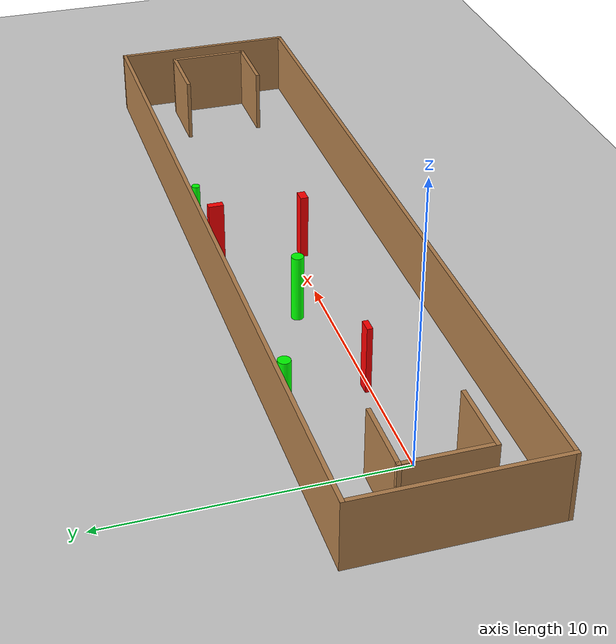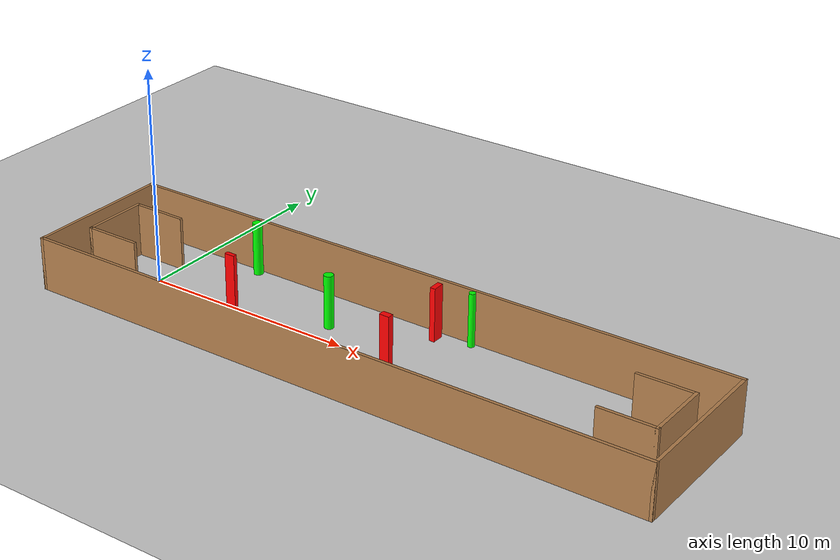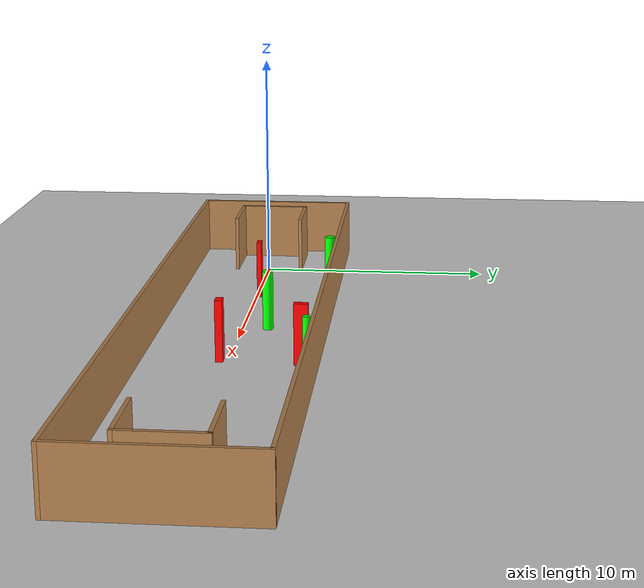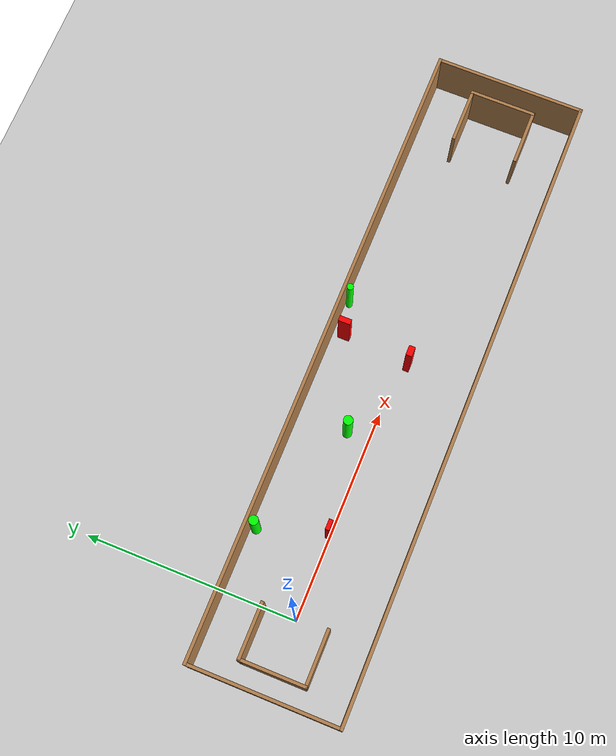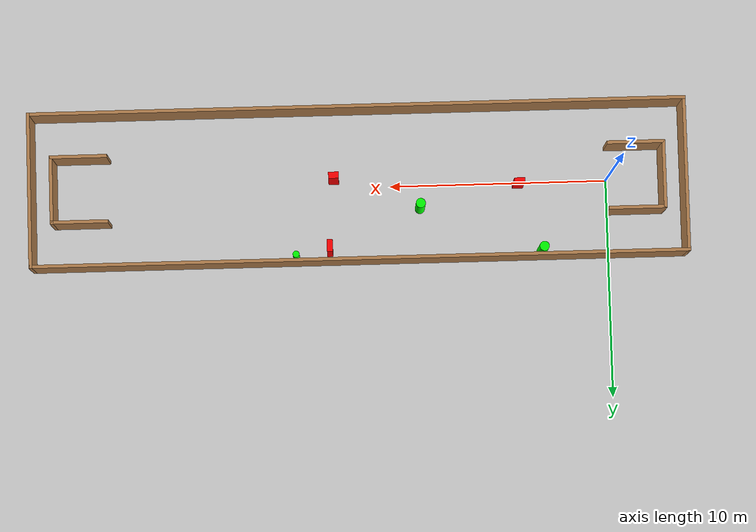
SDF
<sdf version="1.7">
 <world name="default">
  <light name="sun" type="directional">
   <pose>0 0 10 0 -0 0</pose>
   <diffuse>0.8 0.8 0.8 1</diffuse>
   <specular>0.2 0.2 0.2 1</specular>
   <attenuation>
    <range>1000</range>
    <constant>0.9</constant>
    <linear>0.01</linear>
    <quadratic>0.001</quadratic>
   </attenuation>
   <direction>-0.5 0.1 -0.9</direction>
   <spot><inner_angle>0</inner_angle><outer_angle>0</outer_angle><falloff>0</falloff></spot>
  </light>
  <model name="ground_plane">
   <static>1</static>
   <link name="link">
    <collision name="collision">
     <geometry><plane><normal>0 0 1</normal><size>100 100</size></plane></geometry>
     <surface>
      <contact><collide_bitmask>65535</collide_bitmask></contact>
      <friction><ode><mu>100</mu><mu2>50</mu2></ode></friction>
     </surface>
    </collision>
    <visual name="visual">
     <cast_shadows>0</cast_shadows>
     <geometry><plane><normal>0 0 1</normal><size>100 100</size></plane></geometry>
     <material>
      <script><uri>file://media/materials/scripts/gazebo.material</uri><name>Gazebo/Grey</name></script>
     </material>
    </visual>
   </link>
  </model>
  <gravity>0 0 -9.8</gravity>
  <magnetic_field>6e-06 2.3e-05 -4.2e-05</magnetic_field>
  <atmosphere type="adiabatic"/>
  <physics type="ode">
   <max_step_size>0.001</max_step_size>
   <real_time_factor>1</real_time_factor>
   <real_time_update_rate>1000</real_time_update_rate>
  </physics>
  <scene><ambient>0.4 0.4 0.4 1</ambient><background>0.7 0.7 0.7 1</background><shadows>1</shadows></scene>
  <spherical_coordinates>
   <surface_model>EARTH_WGS84</surface_model>
   <latitude_deg>0</latitude_deg>
   <longitude_deg>0</longitude_deg>
   <elevation>0</elevation>
   <heading_deg>0</heading_deg>
  </spherical_coordinates>
  <model name="my_base_walls">
   <link name="Wall_0">
    <collision name="Wall_0_Collision">
     <geometry><box><size>7.15 0.15 2.5</size></box></geometry>
     <pose>0 0 1.25 0 -0 0</pose>
    </collision>
    <visual name="Wall_0_Visual">
     <pose>0 0 1.25 0 -0 0</pose>
     <geometry><box><size>7.15 0.15 2.5</size></box></geometry>
     <material>
      <script><uri>file://media/materials/scripts/gazebo.material</uri><name>Gazebo/Wood</name></script>
      <ambient>1 1 1 1</ambient>
     </material>
     <meta><layer>0</layer></meta>
    </visual>
    <pose>-15 0 0 0 -0 1.5708</pose>
   </link>
   <link name="Wall_10">
    <collision name="Wall_10_Collision">
     <geometry><box><size>2.65 0.15 2.5</size></box></geometry>
     <pose>0 0 1.25 0 -0 0</pose>
    </collision>
    <visual name="Wall_10_Visual">
     <pose>0 0 1.25 0 -0 0</pose>
     <geometry><box><size>2.65 0.15 2.5</size></box></geometry>
     <material>
      <script><uri>file://media/materials/scripts/gazebo.material</uri><name>Gazebo/Wood</name></script>
      <ambient>1 1 1 1</ambient>
     </material>
     <meta><layer>0</layer></meta>
    </visual>
    <pose>-12.75 -1.5 0 0 -0 0</pose>
   </link>
   <link name="Wall_12">
    <collision name="Wall_12_Collision">
     <geometry><box><size>2.65 0.15 2.5</size></box></geometry>
     <pose>0 0 1.25 0 -0 0</pose>
    </collision>
    <visual name="Wall_12_Visual">
     <pose>0 0 1.25 0 -0 0</pose>
     <geometry><box><size>2.65 0.15 2.5</size></box></geometry>
     <material>
      <script><uri>file://media/materials/scripts/gazebo.material</uri><name>Gazebo/Wood</name></script>
      <ambient>1 1 1 1</ambient>
     </material>
     <meta><layer>0</layer></meta>
    </visual>
    <pose>-12.75 1.5 0 0 -0 0</pose>
   </link>
   <link name="Wall_14">
    <collision name="Wall_14_Collision">
     <geometry><box><size>3.15 0.15 2.5</size></box></geometry>
     <pose>0 0 1.25 0 -0 0</pose>
    </collision>
    <visual name="Wall_14_Visual">
     <pose>0 0 1.25 0 -0 0</pose>
     <geometry><box><size>3.15 0.15 2.5</size></box></geometry>
     <material>
      <script><uri>file://media/materials/scripts/gazebo.material</uri><name>Gazebo/Wood</name></script>
      <ambient>1 1 1 1</ambient>
     </material>
     <meta><layer>0</layer></meta>
    </visual>
    <pose>14 0 0 0 -0 -1.5708</pose>
   </link>
   <link name="Wall_15">
    <collision name="Wall_15_Collision">
     <geometry><box><size>2.65 0.15 2.5</size></box></geometry>
     <pose>0 0 1.25 0 -0 0</pose>
    </collision>
    <visual name="Wall_15_Visual">
     <pose>0 0 1.25 0 -0 0</pose>
     <geometry><box><size>2.65 0.15 2.5</size></box></geometry>
     <material>
      <script><uri>file://media/materials/scripts/gazebo.material</uri><name>Gazebo/Wood</name></script>
      <ambient>1 1 1 1</ambient>
     </material>
     <meta><layer>0</layer></meta>
    </visual>
    <pose>12.75 -1.5 0 0 -0 3.14159</pose>
   </link>
   <link name="Wall_17">
    <collision name="Wall_17_Collision">
     <geometry><box><size>2.65 0.15 2.5</size></box></geometry>
     <pose>0 0 1.25 0 -0 0</pose>
    </collision>
    <visual name="Wall_17_Visual">
     <pose>0 0 1.25 0 -0 0</pose>
     <geometry><box><size>2.65 0.15 2.5</size></box></geometry>
     <material>
      <script><uri>file://media/materials/scripts/gazebo.material</uri><name>Gazebo/Wood</name></script>
      <ambient>1 1 1 1</ambient>
     </material>
     <meta><layer>0</layer></meta>
    </visual>
    <pose>12.75 1.5 0 0 -0 3.14159</pose>
   </link>
   <link name="Wall_2">
    <collision name="Wall_2_Collision">
     <geometry><box><size>30.15 0.15 2.5</size></box></geometry>
     <pose>0 0 1.25 0 -0 0</pose>
    </collision>
    <visual name="Wall_2_Visual">
     <pose>0 0 1.25 0 -0 0</pose>
     <geometry><box><size>30.15 0.15 2.5</size></box></geometry>
     <material>
      <script><uri>file://media/materials/scripts/gazebo.material</uri><name>Gazebo/Wood</name></script>
      <ambient>1 1 1 1</ambient>
     </material>
     <meta><layer>0</layer></meta>
    </visual>
    <pose>-0 -3.5 0 0 -0 0</pose>
   </link>
   <link name="Wall_4">
    <collision name="Wall_4_Collision">
     <geometry><box><size>30.15 0.15 2.5</size></box></geometry>
     <pose>0 0 1.25 0 -0 0</pose>
    </collision>
    <visual name="Wall_4_Visual">
     <pose>0 0 1.25 0 -0 0</pose>
     <geometry><box><size>30.15 0.15 2.5</size></box></geometry>
     <material>
      <script><uri>file://media/materials/scripts/gazebo.material</uri><name>Gazebo/Wood</name></script>
      <ambient>1 1 1 1</ambient>
     </material>
     <meta><layer>0</layer></meta>
    </visual>
    <pose>-0 3.5 0 0 -0 0</pose>
   </link>
   <link name="Wall_6">
    <collision name="Wall_6_Collision">
     <geometry><box><size>7.15 0.15 2.5</size></box></geometry>
     <pose>0 0 1.25 0 -0 0</pose>
    </collision>
    <visual name="Wall_6_Visual">
     <pose>0 0 1.25 0 -0 0</pose>
     <geometry><box><size>7.15 0.15 2.5</size></box></geometry>
     <material>
      <script><uri>file://media/materials/scripts/gazebo.material</uri><name>Gazebo/Wood</name></script>
      <ambient>1 1 1 1</ambient>
     </material>
     <meta><layer>0</layer></meta>
    </visual>
    <pose>15 0 0 0 -0 -1.5708</pose>
   </link>
   <link name="Wall_9">
    <collision name="Wall_9_Collision">
     <geometry><box><size>3.15 0.15 2.5</size></box></geometry>
     <pose>0 0 1.25 0 -0 0</pose>
    </collision>
    <visual name="Wall_9_Visual">
     <pose>0 0 1.25 0 -0 0</pose>
     <geometry><box><size>3.15 0.15 2.5</size></box></geometry>
     <material>
      <script><uri>file://media/materials/scripts/gazebo.material</uri><name>Gazebo/Wood</name></script>
      <ambient>1 1 1 1</ambient>
     </material>
     <meta><layer>0</layer></meta>
    </visual>
    <pose>-14 0 0 0 -0 -1.5708</pose>
   </link>
   <static>1</static>
   <pose>11.5 0 0 0 -0 0</pose>
  </model>
  <model name="cylinder1">
   <static>1</static>
   <link name="link">
    <inertial>
     <mass>1</mass>
     <inertia><ixx>0.5</ixx><ixy>0</ixy><ixz>0</ixz><iyy>0.5</iyy><iyz>0</iyz><izz>1</izz></inertia>
    </inertial>
    <collision name="collision">
     <geometry><cylinder><radius>0.15075499646026963</radius><length>2.5</length></cylinder></geometry>
    </collision>
    <visual name="visual">
     <geometry><cylinder><radius>0.15075499646026963</radius><length>2.5</length></cylinder></geometry>
     <material>
      <ambient>0 1 0 1</ambient>
      <diffuse>0 1 0 1</diffuse>
      <specular>0.1 0.1 0.1 1</specular>
      <emissive>0 0 0 0</emissive>
     </material>
    </visual>
   </link>
   <pose>14.39935593416353 3.243726516934669 1.25 0 0 0</pose>
  </model>
  <model name="cylinder2">
   <static>1</static>
   <link name="link">
    <inertial>
     <mass>1</mass>
     <inertia><ixx>0.5</ixx><ixy>0</ixy><ixz>0</ixz><iyy>0.5</iyy><iyz>0</iyz><izz>1</izz></inertia>
    </inertial>
    <collision name="collision">
     <geometry><cylinder><radius>0.22097189168876097</radius><length>2.5</length></cylinder></geometry>
    </collision>
    <visual name="visual">
     <geometry><cylinder><radius>0.22097189168876097</radius><length>2.5</length></cylinder></geometry>
     <material>
      <ambient>0 1 0 1</ambient>
      <diffuse>0 1 0 1</diffuse>
      <specular>0.1 0.1 0.1 1</specular>
      <emissive>0 0 0 0</emissive>
     </material>
    </visual>
   </link>
   <pose>8.652181025923221 1.0558509536817349 1.25 0 0 0</pose>
  </model>
  <model name="cylinder3">
   <static>1</static>
   <link name="link">
    <inertial>
     <mass>1</mass>
     <inertia><ixx>0.5</ixx><ixy>0</ixy><ixz>0</ixz><iyy>0.5</iyy><iyz>0</iyz><izz>1</izz></inertia>
    </inertial>
    <collision name="collision">
     <geometry><cylinder><radius>0.2208474305587136</radius><length>2.5</length></cylinder></geometry>
    </collision>
    <visual name="visual">
     <geometry><cylinder><radius>0.2208474305587136</radius><length>2.5</length></cylinder></geometry>
     <material>
      <ambient>0 1 0 1</ambient>
      <diffuse>0 1 0 1</diffuse>
      <specular>0.1 0.1 0.1 1</specular>
      <emissive>0 0 0 0</emissive>
     </material>
    </visual>
   </link>
   <pose>3.0711628047821424 3.1753597725964635 1.25 0 0 0</pose>
  </model>
  <model name="box1">
   <static>1</static>
   <link name="link">
    <inertial>
     <mass>1</mass>
     <inertia><ixx>0.083</ixx><ixy>0</ixy><ixz>0</ixz><iyy>0.083</iyy><iyz>0</iyz><izz>0.083</izz></inertia>
    </inertial>
    <collision name="collision">
     <geometry><box><size>0.25370503188441107 0.5688000524866467 2.5</size></box></geometry>
    </collision>
    <visual name="visual">
     <geometry><box><size>0.25370503188441107 0.5688000524866467 2.5</size></box></geometry>
     <material>
      <ambient>1 0 0 1</ambient>
      <diffuse>1 0 0 1</diffuse>
      <specular>0.1 0.1 0.1 1</specular>
      <emissive>0 0 0 0</emissive>
     </material>
    </visual>
    <sensor name="my_contact" type="contact">
     <contact><collision>box_collision</collision><topic>__default_topic__</topic></contact>
    </sensor>
   </link>
   <pose>12.853803308817128 2.883857338495047 1.25 0 0 0</pose>
  </model>
  <model name="box2">
   <static>1</static>
   <link name="link">
    <inertial>
     <mass>1</mass>
     <inertia><ixx>0.083</ixx><ixy>0</ixy><ixz>0</ixz><iyy>0.083</iyy><iyz>0</iyz><izz>0.083</izz></inertia>
    </inertial>
    <collision name="collision">
     <geometry><box><size>0.4884533206854899 0.2005860368645651 2.5</size></box></geometry>
    </collision>
    <visual name="visual">
     <geometry><box><size>0.4884533206854899 0.2005860368645651 2.5</size></box></geometry>
     <material>
      <ambient>1 0 0 1</ambient>
      <diffuse>1 0 0 1</diffuse>
      <specular>0.1 0.1 0.1 1</specular>
      <emissive>0 0 0 0</emissive>
     </material>
    </visual>
    <sensor name="my_contact" type="contact">
     <contact><collision>box_collision</collision><topic>__default_topic__</topic></contact>
    </sensor>
   </link>
   <pose>4.103107703880248 0.11328697422521383 1.25 0 0 0</pose>
  </model>
  <model name="box3">
   <static>1</static>
   <link name="link">
    <inertial>
     <mass>1</mass>
     <inertia><ixx>0.083</ixx><ixy>0</ixy><ixz>0</ixz><iyy>0.083</iyy><iyz>0</iyz><izz>0.083</izz></inertia>
    </inertial>
    <collision name="collision">
     <geometry><box><size>0.4675232607053621 0.2929603244579635 2.5</size></box></geometry>
    </collision>
    <visual name="visual">
     <geometry><box><size>0.4675232607053621 0.2929603244579635 2.5</size></box></geometry>
     <material>
      <ambient>1 0 0 1</ambient>
      <diffuse>1 0 0 1</diffuse>
      <specular>0.1 0.1 0.1 1</specular>
      <emissive>0 0 0 0</emissive>
     </material>
    </visual>
    <sensor name="my_contact" type="contact">
     <contact><collision>box_collision</collision><topic>__default_topic__</topic></contact>
    </sensor>
   </link>
   <pose>12.606646207760384 -0.3341334085230745 1.25 0 0 0</pose>
  </model>
 </world>
</sdf>
